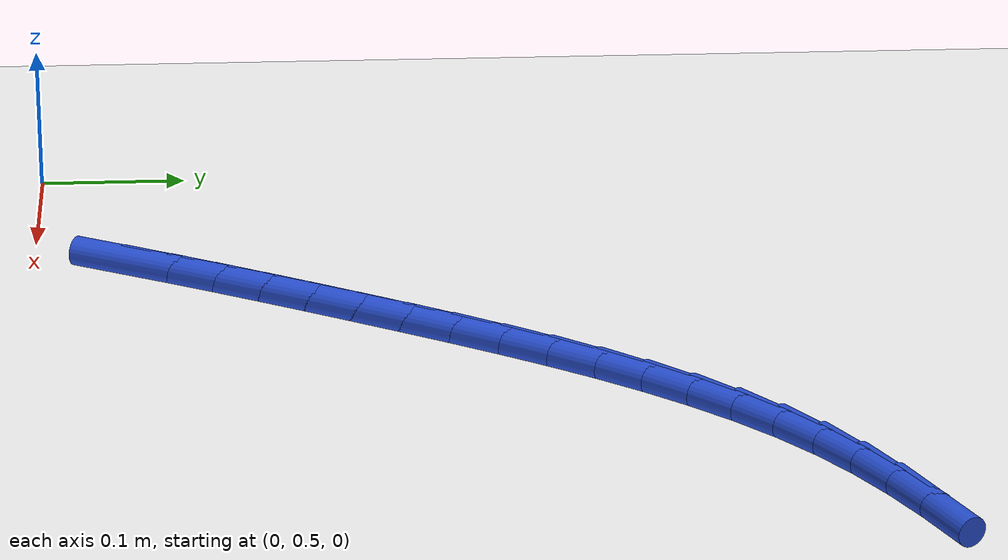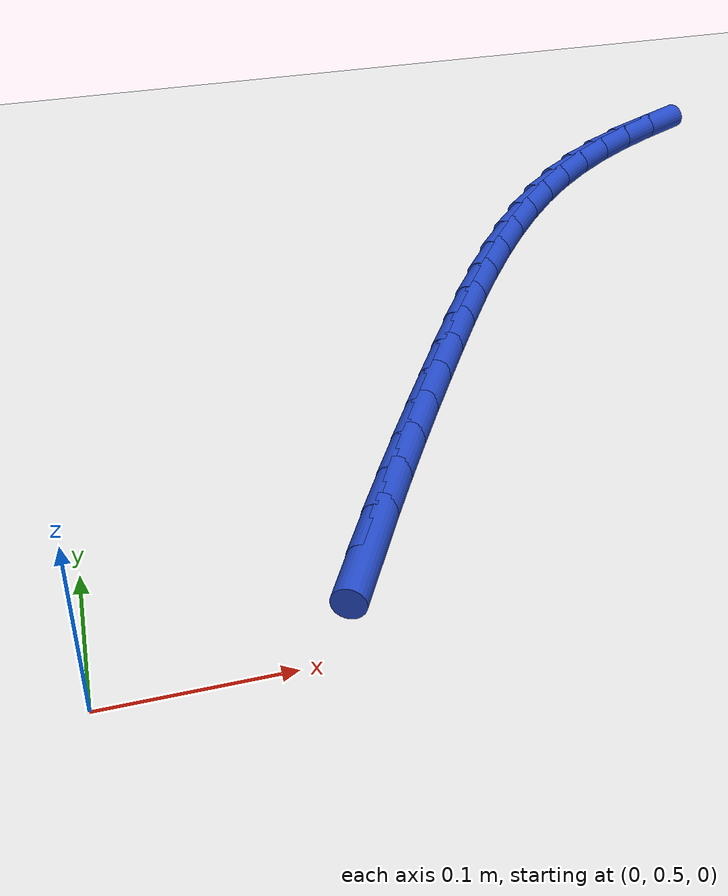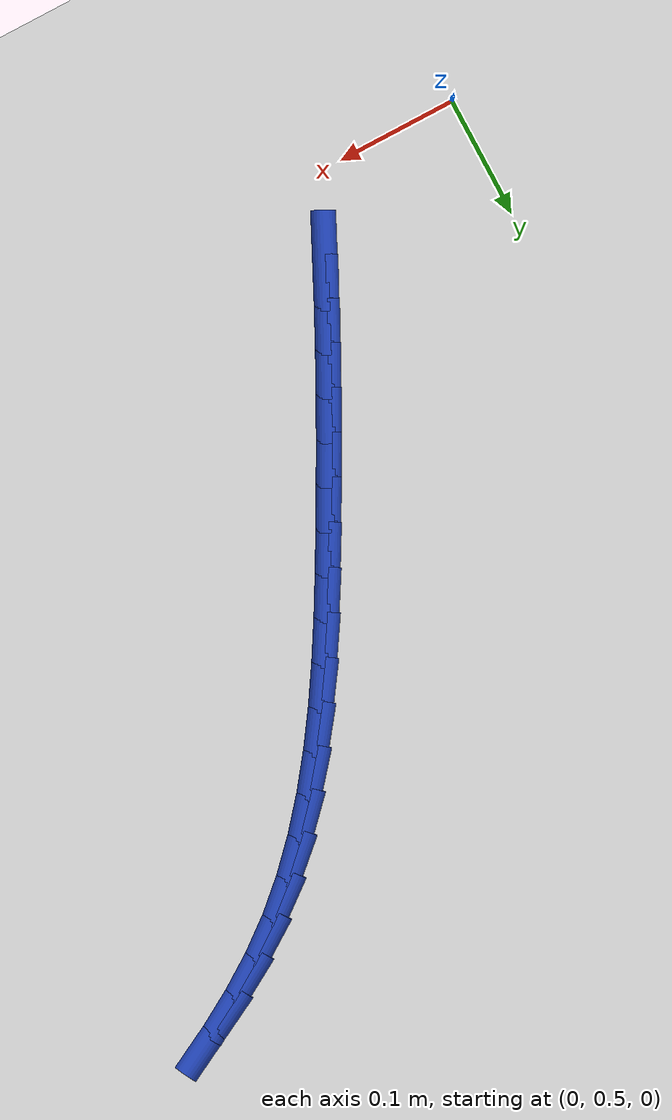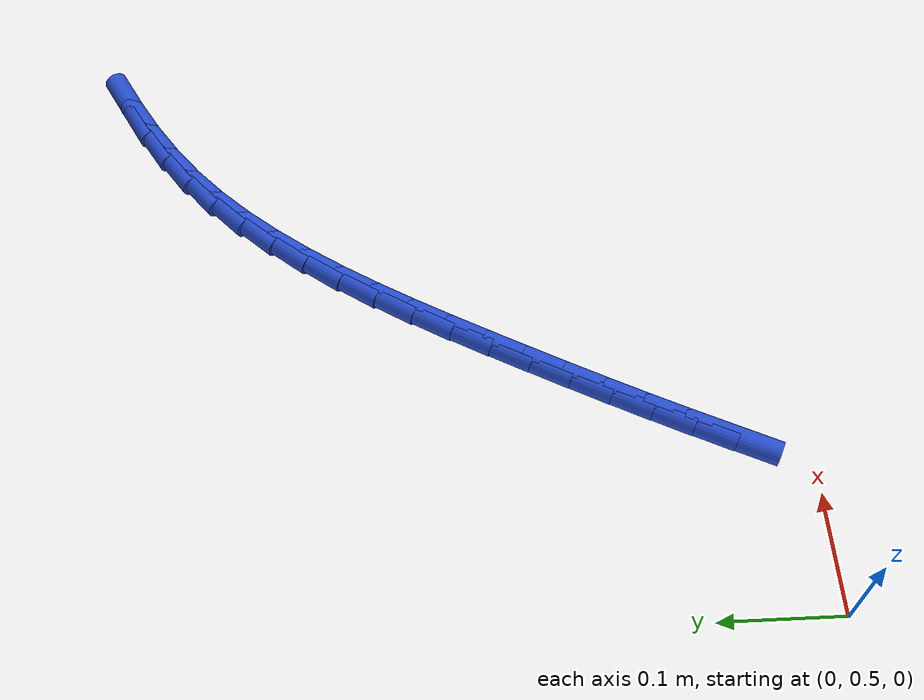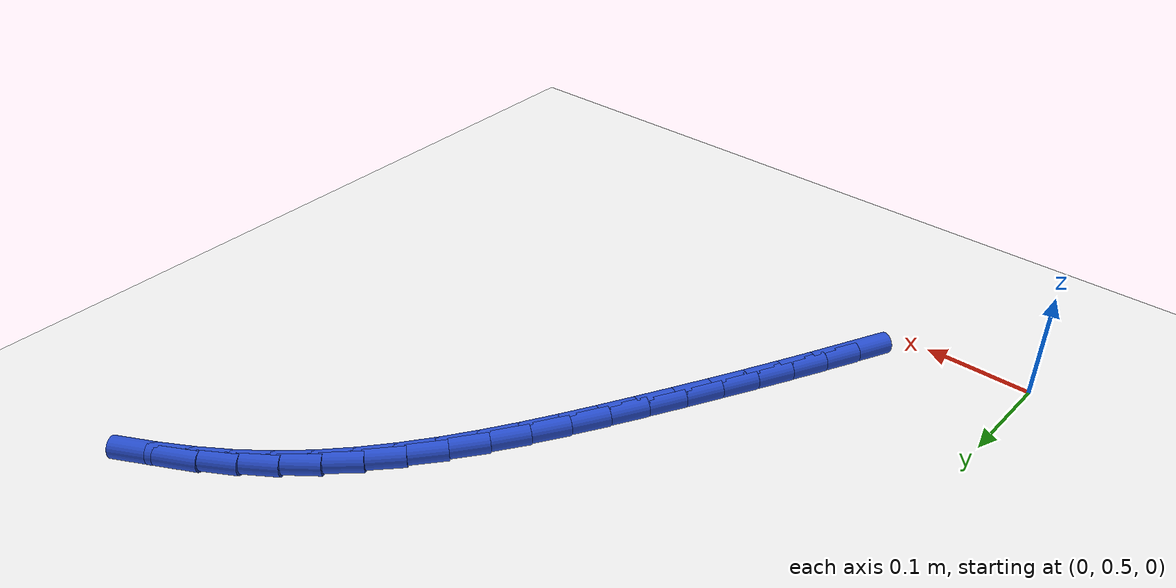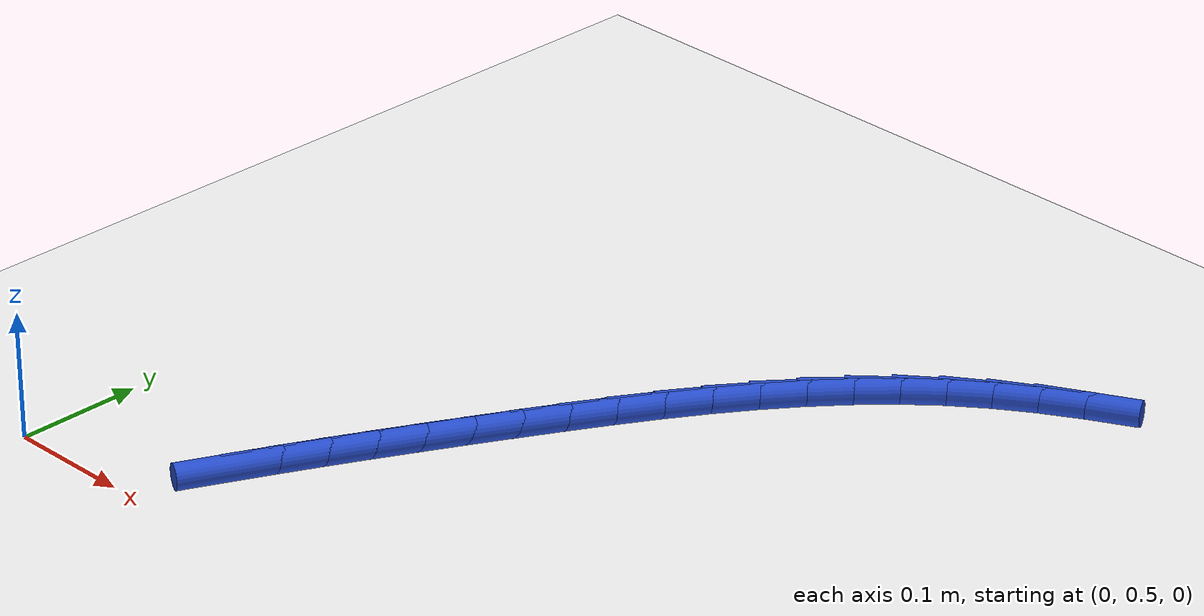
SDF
<sdf version="1.6">
 <world name="default">
  <model name="ground_plane">
   <static>1</static>
   <link name="link">
    <collision name="collision">
     <geometry><plane><normal>0 0 1</normal><size>100 100</size></plane></geometry>
     <surface><friction><ode><mu>100</mu><mu2>50</mu2></ode></friction></surface>
    </collision>
    <visual name="visual">
     <cast_shadows>0</cast_shadows>
     <geometry><plane><normal>0 0 1</normal><size>100 100</size></plane></geometry>
     <material>
      <script><uri>file://media/materials/scripts/gazebo.material</uri><name>Gazebo/WhiteGlow</name></script>
     </material>
    </visual>
   </link>
  </model>
  <model name="line">
   <link name="link_17">
    <pose>0.1479890076704268 0.5646673512627043 0.01 0 1.57 1.1222571949077498</pose>
    <collision name="collision">
     <geometry><cylinder><radius>0.01</radius><length>0.08</length></cylinder></geometry>
    </collision>
    <visual name="visual">
     <material>
      <script><name>Gazebo/Blue</name><uri>file://media/materials/scripts/gazebo.material</uri></script>
     </material>
     <geometry><cylinder><radius>0.01</radius><length>0.08</length></cylinder></geometry>
    </visual>
   </link>
   <link name="link_18">
    <pose>0.16304103510846907 0.5959439934378342 0.01 0 1.57 1.1100598791975194</pose>
    <collision name="collision">
     <geometry><cylinder><radius>0.01</radius><length>0.08</length></cylinder></geometry>
    </collision>
    <visual name="visual">
     <material>
      <script><name>Gazebo/Blue</name><uri>file://media/materials/scripts/gazebo.material</uri></script>
     </material>
     <geometry><cylinder><radius>0.01</radius><length>0.08</length></cylinder></geometry>
    </visual>
   </link>
   <link name="link_19">
    <pose>0.17852579851174646 0.6271402341139833 0.01 0 1.57 1.099360210108544</pose>
    <collision name="collision">
     <geometry><cylinder><radius>0.01</radius><length>0.08</length></cylinder></geometry>
    </collision>
    <visual name="visual">
     <material>
      <script><name>Gazebo/Blue</name><uri>file://media/materials/scripts/gazebo.material</uri></script>
     </material>
     <geometry><cylinder><radius>0.01</radius><length>0.08</length></cylinder></geometry>
    </visual>
   </link>
   <link name="link_20">
    <pose>0.19440360358063938 0.6582869939766448 0.01 0 1.57 1.0901526892326436</pose>
    <collision name="collision">
     <geometry><cylinder><radius>0.01</radius><length>0.08</length></cylinder></geometry>
    </collision>
    <visual name="visual">
     <material>
      <script><name>Gazebo/Blue</name><uri>file://media/materials/scripts/gazebo.material</uri></script>
     </material>
     <geometry><cylinder><radius>0.01</radius><length>0.08</length></cylinder></geometry>
    </visual>
   </link>
   <link name="link_21">
    <pose>0.2106347560155283 0.6894151937113124 0.01 0 1.57 1.082427743971415</pose>
    <collision name="collision">
     <geometry><cylinder><radius>0.01</radius><length>0.08</length></cylinder></geometry>
    </collision>
    <visual name="visual">
     <material>
      <script><name>Gazebo/Blue</name><uri>file://media/materials/scripts/gazebo.material</uri></script>
     </material>
     <geometry><cylinder><radius>0.01</radius><length>0.08</length></cylinder></geometry>
    </visual>
   </link>
   <link name="link_22">
    <pose>0.2271795615167937 0.7205557540034793 0.01 0 1.57 1.076169886864451</pose>
    <collision name="collision">
     <geometry><cylinder><radius>0.01</radius><length>0.08</length></cylinder></geometry>
    </collision>
    <visual name="visual">
     <material>
      <script><name>Gazebo/Blue</name><uri>file://media/materials/scripts/gazebo.material</uri></script>
     </material>
     <geometry><cylinder><radius>0.01</radius><length>0.08</length></cylinder></geometry>
    </visual>
   </link>
   <link name="link_23">
    <pose>0.24399838453686903 0.7517395146338893 0.01 0 1.57 1.069370174484882</pose>
    <collision name="collision">
     <geometry><cylinder><radius>0.01</radius><length>0.08</length></cylinder></geometry>
    </collision>
    <visual name="visual">
     <material>
      <script><name>Gazebo/Blue</name><uri>file://media/materials/scripts/gazebo.material</uri></script>
     </material>
     <geometry><cylinder><radius>0.01</radius><length>0.08</length></cylinder></geometry>
    </visual>
   </link>
   <link name="link_24">
    <pose>0.26109771179511226 0.7829338025306554 0.01 0 1.57 1.056435618433369</pose>
    <collision name="collision">
     <geometry><cylinder><radius>0.01</radius><length>0.08</length></cylinder></geometry>
    </collision>
    <visual name="visual">
     <material>
      <script><name>Gazebo/Blue</name><uri>file://media/materials/scripts/gazebo.material</uri></script>
     </material>
     <geometry><cylinder><radius>0.01</radius><length>0.08</length></cylinder></geometry>
    </visual>
   </link>
   <link name="link_25">
    <pose>0.27861280967705626 0.813928608066145 0.01 0 1.57 1.0362772358476444</pose>
    <collision name="collision">
     <geometry><cylinder><radius>0.01</radius><length>0.08</length></cylinder></geometry>
    </collision>
    <visual name="visual">
     <material>
      <script><name>Gazebo/Blue</name><uri>file://media/materials/scripts/gazebo.material</uri></script>
     </material>
     <geometry><cylinder><radius>0.01</radius><length>0.08</length></cylinder></geometry>
    </visual>
   </link>
   <link name="link_26">
    <pose>0.2967012463463842 0.84448321085969 0.01 0 1.57 1.0086353335715534</pose>
    <collision name="collision">
     <geometry><cylinder><radius>0.01</radius><length>0.08</length></cylinder></geometry>
    </collision>
    <visual name="visual">
     <material>
      <script><name>Gazebo/Blue</name><uri>file://media/materials/scripts/gazebo.material</uri></script>
     </material>
     <geometry><cylinder><radius>0.01</radius><length>0.08</length></cylinder></geometry>
    </visual>
   </link>
   <link name="link_27">
    <pose>0.31552058996677884 0.8743568905306207 0.01 0 1.57 0.9731372006529276</pose>
    <collision name="collision">
     <geometry><cylinder><radius>0.01</radius><length>0.08</length></cylinder></geometry>
    </collision>
    <visual name="visual">
     <material>
      <script><name>Gazebo/Blue</name><uri>file://media/materials/scripts/gazebo.material</uri></script>
     </material>
     <geometry><cylinder><radius>0.01</radius><length>0.08</length></cylinder></geometry>
    </visual>
   </link>
   <link name="link_28">
    <pose>0.3352284087019234 0.9033089266982689 0.01 0 1.57 0.929334012522785</pose>
    <collision name="collision">
     <geometry><cylinder><radius>0.01</radius><length>0.08</length></cylinder></geometry>
    </collision>
    <visual name="visual">
     <material>
      <script><name>Gazebo/Blue</name><uri>file://media/materials/scripts/gazebo.material</uri></script>
     </material>
     <geometry><cylinder><radius>0.01</radius><length>0.08</length></cylinder></geometry>
    </visual>
   </link>
   <link name="link_29">
    <pose>0.35598227071550054 0.9310985989819649 0.01 0 1.57 0.8767596339352454</pose>
    <collision name="collision">
     <geometry><cylinder><radius>0.01</radius><length>0.08</length></cylinder></geometry>
    </collision>
    <visual name="visual">
     <material>
      <script><name>Gazebo/Blue</name><uri>file://media/materials/scripts/gazebo.material</uri></script>
     </material>
     <geometry><cylinder><radius>0.01</radius><length>0.08</length></cylinder></geometry>
    </visual>
   </link>
   <link name="link_30">
    <pose>0.3779397441711933 0.9574851870010399 0.01 0 1.57 0.8150209510390791</pose>
    <collision name="collision">
     <geometry><cylinder><radius>0.01</radius><length>0.08</length></cylinder></geometry>
    </collision>
    <visual name="visual">
     <material>
      <script><name>Gazebo/Blue</name><uri>file://media/materials/scripts/gazebo.material</uri></script>
     </material>
     <geometry><cylinder><radius>0.01</radius><length>0.08</length></cylinder></geometry>
    </visual>
   </link>
   <link name="link_31">
    <pose>0.40125839723268486 0.9822279703748253 0.01 0 1.57 0.7439267222304791</pose>
    <collision name="collision">
     <geometry><cylinder><radius>0.01</radius><length>0.08</length></cylinder></geometry>
    </collision>
    <visual name="visual">
     <material>
      <script><name>Gazebo/Blue</name><uri>file://media/materials/scripts/gazebo.material</uri></script>
     </material>
     <geometry><cylinder><radius>0.01</radius><length>0.08</length></cylinder></geometry>
    </visual>
   </link>
   <link name="link_32">
    <pose>0.4260957980636578 1.0050862287226519 0.01 0 1.57 0.6656174113574291</pose>
    <collision name="collision">
     <geometry><cylinder><radius>0.01</radius><length>0.08</length></cylinder></geometry>
    </collision>
    <visual name="visual">
     <material>
      <script><name>Gazebo/Blue</name><uri>file://media/materials/scripts/gazebo.material</uri></script>
     </material>
     <geometry><cylinder><radius>0.01</radius><length>0.08</length></cylinder></geometry>
    </visual>
   </link>
   <link name="link_33">
    <pose>0.45257244700495974 1.0258742483283745 0.01 0 1.57 0.5935215961432168</pose>
    <collision name="collision">
     <geometry><cylinder><radius>0.01</radius><length>0.08</length></cylinder></geometry>
    </collision>
    <visual name="visual">
     <material>
      <script><name>Gazebo/Blue</name><uri>file://media/materials/scripts/gazebo.material</uri></script>
     </material>
     <geometry><cylinder><radius>0.01</radius><length>0.08</length></cylinder></geometry>
    </visual>
   </link>
   <link name="link_34">
    <pose>0.4805688161468793 1.0447625045488709 0.01 0 1.57 0.5333702072227969</pose>
    <collision name="collision">
     <geometry><cylinder><radius>0.01</radius><length>0.08</length></cylinder></geometry>
    </collision>
    <visual name="visual">
     <material>
      <script><name>Gazebo/Blue</name><uri>file://media/materials/scripts/gazebo.material</uri></script>
     </material>
     <geometry><cylinder><radius>0.01</radius><length>0.08</length></cylinder></geometry>
    </visual>
   </link>
   <link name="link_35">
    <pose>0.5098697715785132 1.062063346928163 0.01 0 1.57 0.4852846803948754</pose>
    <collision name="collision">
     <geometry><cylinder><radius>0.01</radius><length>0.08</length></cylinder></geometry>
    </collision>
    <visual name="visual">
     <material>
      <script><name>Gazebo/Blue</name><uri>file://media/materials/scripts/gazebo.material</uri></script>
     </material>
     <geometry><cylinder><radius>0.01</radius><length>0.08</length></cylinder></geometry>
    </visual>
   </link>
  </model>
 </world>
</sdf>
